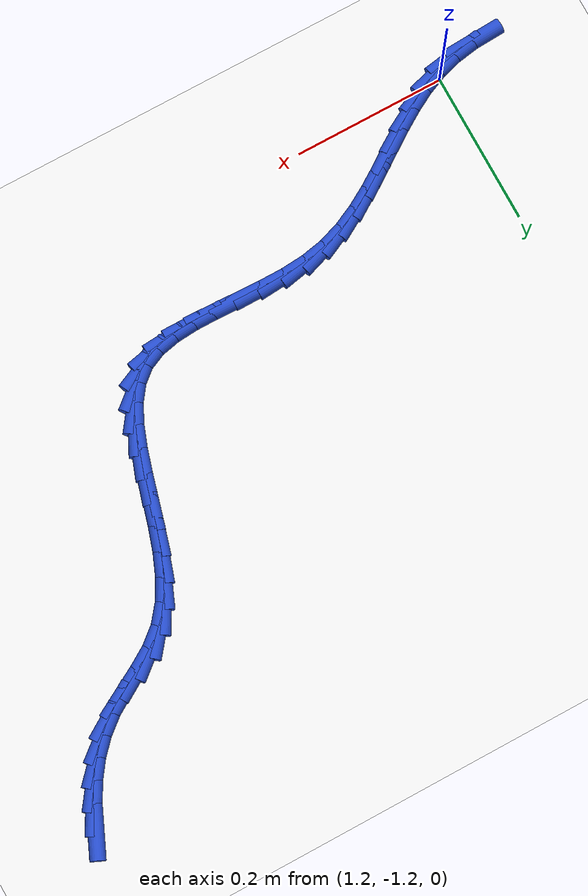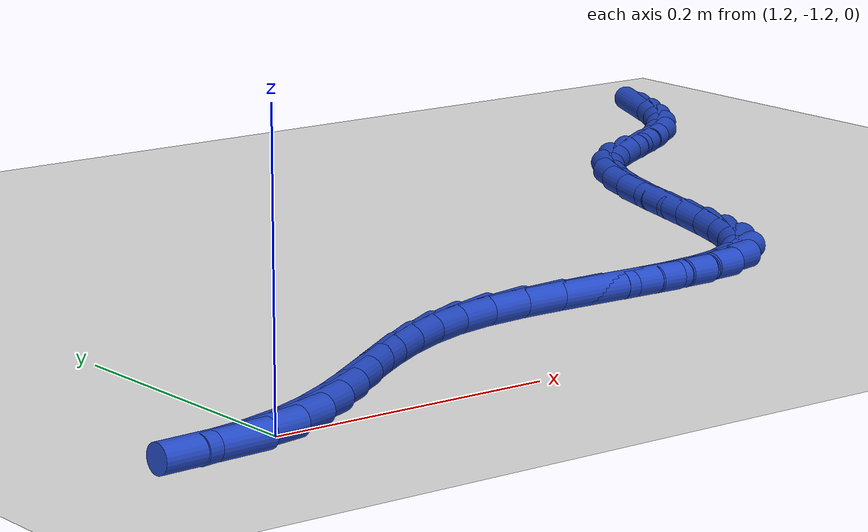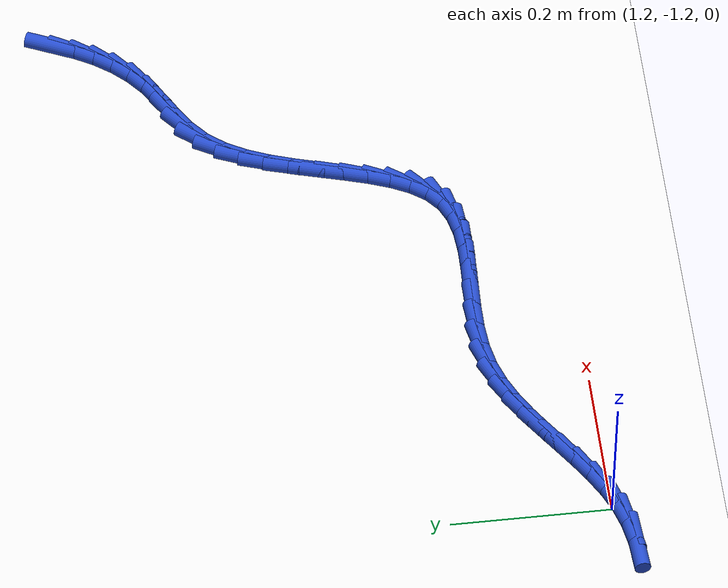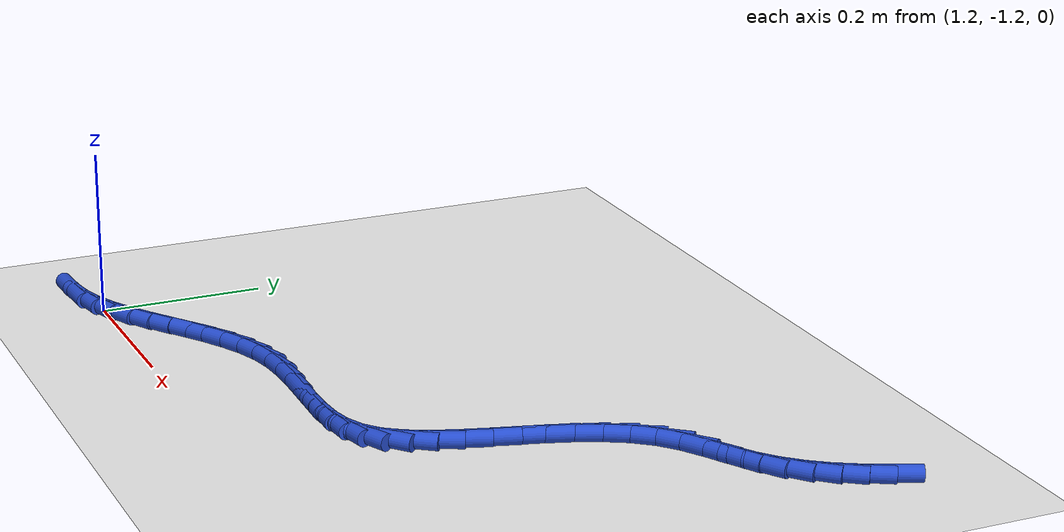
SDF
<sdf version="1.6">
 <world name="default">
  <model name="ground_plane">
   <static>1</static>
   <link name="link">
    <collision name="collision">
     <geometry><plane><normal>0 0 1</normal><size>100 100</size></plane></geometry>
     <surface><friction><ode><mu>100</mu><mu2>50</mu2></ode></friction></surface>
    </collision>
    <visual name="visual">
     <cast_shadows>0</cast_shadows>
     <geometry><plane><normal>0 0 1</normal><size>100 100</size></plane></geometry>
     <material>
      <script><uri>file://media/materials/scripts/gazebo.material</uri><name>Gazebo/WhiteGlow</name></script>
     </material>
    </visual>
   </link>
  </model>
  <model name="line">
   <link name="link_139">
    <pose>2.0072174687223088 -0.5885485716587876 0.01 0 1.57 1.1530857166393251</pose>
    <collision name="collision">
     <geometry><cylinder><radius>0.01</radius><length>0.08</length></cylinder></geometry>
    </collision>
    <visual name="visual">
     <material>
      <script><name>Gazebo/Blue</name><uri>file://media/materials/scripts/gazebo.material</uri></script>
     </material>
     <geometry><cylinder><radius>0.01</radius><length>0.08</length></cylinder></geometry>
    </visual>
   </link>
   <link name="link_140">
    <pose>1.9957252888035395 -0.6144418094183667 0.01 0 1.57 1.057908301661954</pose>
    <collision name="collision">
     <geometry><cylinder><radius>0.01</radius><length>0.08</length></cylinder></geometry>
    </collision>
    <visual name="visual">
     <material>
      <script><name>Gazebo/Blue</name><uri>file://media/materials/scripts/gazebo.material</uri></script>
     </material>
     <geometry><cylinder><radius>0.01</radius><length>0.08</length></cylinder></geometry>
    </visual>
   </link>
   <link name="link_141">
    <pose>1.982110468630761 -0.6386177182835386 0.01 0 1.57 0.9481592648895579</pose>
    <collision name="collision">
     <geometry><cylinder><radius>0.01</radius><length>0.08</length></cylinder></geometry>
    </collision>
    <visual name="visual">
     <material>
      <script><name>Gazebo/Blue</name><uri>file://media/materials/scripts/gazebo.material</uri></script>
     </material>
     <geometry><cylinder><radius>0.01</radius><length>0.08</length></cylinder></geometry>
    </visual>
   </link>
   <link name="link_142">
    <pose>1.9661319283271026 -0.6608751267630769 0.01 0 1.57 0.8255200364133276</pose>
    <collision name="collision">
     <geometry><cylinder><radius>0.01</radius><length>0.08</length></cylinder></geometry>
    </collision>
    <visual name="visual">
     <material>
      <script><name>Gazebo/Blue</name><uri>file://media/materials/scripts/gazebo.material</uri></script>
     </material>
     <geometry><cylinder><radius>0.01</radius><length>0.08</length></cylinder></geometry>
    </visual>
   </link>
   <link name="link_143">
    <pose>1.9475485880156924 -0.6810128633657533 0.01 0 1.57 0.6936138541228529</pose>
    <collision name="collision">
     <geometry><cylinder><radius>0.01</radius><length>0.08</length></cylinder></geometry>
    </collision>
    <visual name="visual">
     <material>
      <script><name>Gazebo/Blue</name><uri>file://media/materials/scripts/gazebo.material</uri></script>
     </material>
     <geometry><cylinder><radius>0.01</radius><length>0.08</length></cylinder></geometry>
    </visual>
   </link>
   <link name="link_144">
    <pose>1.926119367819661 -0.6988297566003412 0.01 0 1.57 0.5667091193999112</pose>
    <collision name="collision">
     <geometry><cylinder><radius>0.01</radius><length>0.08</length></cylinder></geometry>
    </collision>
    <visual name="visual">
     <material>
      <script><name>Gazebo/Blue</name><uri>file://media/materials/scripts/gazebo.material</uri></script>
     </material>
     <geometry><cylinder><radius>0.01</radius><length>0.08</length></cylinder></geometry>
    </visual>
   </link>
   <link name="link_145">
    <pose>1.9017964690643434 -0.7143072781014651 0.01 0 1.57 0.5134840861726183</pose>
    <collision name="collision">
     <geometry><cylinder><radius>0.01</radius><length>0.08</length></cylinder></geometry>
    </collision>
    <visual name="visual">
     <material>
      <script><name>Gazebo/Blue</name><uri>file://media/materials/scripts/gazebo.material</uri></script>
     </material>
     <geometry><cylinder><radius>0.01</radius><length>0.08</length></cylinder></geometry>
    </visual>
   </link>
   <link name="link_146">
    <pose>1.876027154249347 -0.7288396734470566 0.01 0 1.57 0.5577552594880382</pose>
    <collision name="collision">
     <geometry><cylinder><radius>0.01</radius><length>0.08</length></cylinder></geometry>
    </collision>
    <visual name="visual">
     <material>
      <script><name>Gazebo/Blue</name><uri>file://media/materials/scripts/gazebo.material</uri></script>
     </material>
     <geometry><cylinder><radius>0.01</radius><length>0.08</length></cylinder></geometry>
    </visual>
   </link>
   <link name="link_147">
    <pose>1.8509557514680757 -0.744479887755 0.01 0 1.57 0.7018582691781554</pose>
    <collision name="collision">
     <geometry><cylinder><radius>0.01</radius><length>0.08</length></cylinder></geometry>
    </collision>
    <visual name="visual">
     <material>
      <script><name>Gazebo/Blue</name><uri>file://media/materials/scripts/gazebo.material</uri></script>
     </material>
     <geometry><cylinder><radius>0.01</radius><length>0.08</length></cylinder></geometry>
    </visual>
   </link>
   <link name="link_148">
    <pose>1.8287230805777628 -0.7632769436053624 0.01 0 1.57 0.9034095454600886</pose>
    <collision name="collision">
     <geometry><cylinder><radius>0.01</radius><length>0.08</length></cylinder></geometry>
    </collision>
    <visual name="visual">
     <material>
      <script><name>Gazebo/Blue</name><uri>file://media/materials/scripts/gazebo.material</uri></script>
     </material>
     <geometry><cylinder><radius>0.01</radius><length>0.08</length></cylinder></geometry>
    </visual>
   </link>
   <link name="link_149">
    <pose>1.8105516316687345 -0.7863368798327973 0.01 0 1.57 1.0662116341294745</pose>
    <collision name="collision">
     <geometry><cylinder><radius>0.01</radius><length>0.08</length></cylinder></geometry>
    </collision>
    <visual name="visual">
     <material>
      <script><name>Gazebo/Blue</name><uri>file://media/materials/scripts/gazebo.material</uri></script>
     </material>
     <geometry><cylinder><radius>0.01</radius><length>0.08</length></cylinder></geometry>
    </visual>
   </link>
   <link name="link_150">
    <pose>1.7958690600953509 -0.8129227154301634 0.01 0 1.57 1.1811802717270141</pose>
    <collision name="collision">
     <geometry><cylinder><radius>0.01</radius><length>0.08</length></cylinder></geometry>
    </collision>
    <visual name="visual">
     <material>
      <script><name>Gazebo/Blue</name><uri>file://media/materials/scripts/gazebo.material</uri></script>
     </material>
     <geometry><cylinder><radius>0.01</radius><length>0.08</length></cylinder></geometry>
    </visual>
   </link>
   <link name="link_151">
    <pose>1.7838952200573297 -0.8420840894932837 0.01 0 1.57 1.2554007407317191</pose>
    <collision name="collision">
     <geometry><cylinder><radius>0.01</radius><length>0.08</length></cylinder></geometry>
    </collision>
    <visual name="visual">
     <material>
      <script><name>Gazebo/Blue</name><uri>file://media/materials/scripts/gazebo.material</uri></script>
     </material>
     <geometry><cylinder><radius>0.01</radius><length>0.08</length></cylinder></geometry>
    </visual>
   </link>
   <link name="link_152">
    <pose>1.7738499657543876 -0.8728706411179808 0.01 0 1.57 1.2952066321543783</pose>
    <collision name="collision">
     <geometry><cylinder><radius>0.01</radius><length>0.08</length></cylinder></geometry>
    </collision>
    <visual name="visual">
     <material>
      <script><name>Gazebo/Blue</name><uri>file://media/materials/scripts/gazebo.material</uri></script>
     </material>
     <geometry><cylinder><radius>0.01</radius><length>0.08</length></cylinder></geometry>
    </visual>
   </link>
   <link name="link_153">
    <pose>1.7649531513862404 -0.9043320094000767 0.01 0 1.57 1.3038491343203942</pose>
    <collision name="collision">
     <geometry><cylinder><radius>0.01</radius><length>0.08</length></cylinder></geometry>
    </collision>
    <visual name="visual">
     <material>
      <script><name>Gazebo/Blue</name><uri>file://media/materials/scripts/gazebo.material</uri></script>
     </material>
     <geometry><cylinder><radius>0.01</radius><length>0.08</length></cylinder></geometry>
    </visual>
   </link>
   <link name="link_154">
    <pose>1.7564246311526057 -0.9355178334353943 0.01 0 1.57 1.280797889272534</pose>
    <collision name="collision">
     <geometry><cylinder><radius>0.01</radius><length>0.08</length></cylinder></geometry>
    </collision>
    <visual name="visual">
     <material>
      <script><name>Gazebo/Blue</name><uri>file://media/materials/scripts/gazebo.material</uri></script>
     </material>
     <geometry><cylinder><radius>0.01</radius><length>0.08</length></cylinder></geometry>
    </visual>
   </link>
   <link name="link_155">
    <pose>1.7474842592531996 -0.9654777523197567 0.01 0 1.57 1.2210966739901248</pose>
    <collision name="collision">
     <geometry><cylinder><radius>0.01</radius><length>0.08</length></cylinder></geometry>
    </collision>
    <visual name="visual">
     <material>
      <script><name>Gazebo/Blue</name><uri>file://media/materials/scripts/gazebo.material</uri></script>
     </material>
     <geometry><cylinder><radius>0.01</radius><length>0.08</length></cylinder></geometry>
    </visual>
   </link>
   <link name="link_156">
    <pose>1.7373518898877394 -0.9932614051489845 0.01 0 1.57 1.114442809829101</pose>
    <collision name="collision">
     <geometry><cylinder><radius>0.01</radius><length>0.08</length></cylinder></geometry>
    </collision>
    <visual name="visual">
     <material>
      <script><name>Gazebo/Blue</name><uri>file://media/materials/scripts/gazebo.material</uri></script>
     </material>
     <geometry><cylinder><radius>0.01</radius><length>0.08</length></cylinder></geometry>
    </visual>
   </link>
   <link name="link_157">
    <pose>1.7252473772559416 -1.0179184310189016 0.01 0 1.57 0.9455207753550096</pose>
    <collision name="collision">
     <geometry><cylinder><radius>0.01</radius><length>0.08</length></cylinder></geometry>
    </collision>
    <visual name="visual">
     <material>
      <script><name>Gazebo/Blue</name><uri>file://media/materials/scripts/gazebo.material</uri></script>
     </material>
     <geometry><cylinder><radius>0.01</radius><length>0.08</length></cylinder></geometry>
    </visual>
   </link>
   <link name="link_158">
    <pose>1.7103905755575222 -1.0384984690253298 0.01 0 1.57 0.7020949692396072</pose>
    <collision name="collision">
     <geometry><cylinder><radius>0.01</radius><length>0.08</length></cylinder></geometry>
    </collision>
    <visual name="visual">
     <material>
      <script><name>Gazebo/Blue</name><uri>file://media/materials/scripts/gazebo.material</uri></script>
     </material>
     <geometry><cylinder><radius>0.01</radius><length>0.08</length></cylinder></geometry>
    </visual>
   </link>
   <link name="link_159">
    <pose>1.6920023669150122 -1.0540526126784493 0.01 0 1.57 0.42566186154324304</pose>
    <collision name="collision">
     <geometry><cylinder><radius>0.01</radius><length>0.08</length></cylinder></geometry>
    </collision>
    <visual name="visual">
     <material>
      <script><name>Gazebo/Blue</name><uri>file://media/materials/scripts/gazebo.material</uri></script>
     </material>
     <geometry><cylinder><radius>0.01</radius><length>0.08</length></cylinder></geometry>
    </visual>
   </link>
   <link name="link_160">
    <pose>1.6696846389627105 -1.0641710425477682 0.01 0 1.57 0.21515661449097956</pose>
    <collision name="collision">
     <geometry><cylinder><radius>0.01</radius><length>0.08</length></cylinder></geometry>
    </collision>
    <visual name="visual">
     <material>
      <script><name>Gazebo/Blue</name><uri>file://media/materials/scripts/gazebo.material</uri></script>
     </material>
     <geometry><cylinder><radius>0.01</radius><length>0.08</length></cylinder></geometry>
    </visual>
   </link>
   <link name="link_161">
    <pose>1.6439882927159788 -1.06978670411578 0.01 0 1.57 0.0791684611538485</pose>
    <collision name="collision">
     <geometry><cylinder><radius>0.01</radius><length>0.08</length></cylinder></geometry>
    </collision>
    <visual name="visual">
     <material>
      <script><name>Gazebo/Blue</name><uri>file://media/materials/scripts/gazebo.material</uri></script>
     </material>
     <geometry><cylinder><radius>0.01</radius><length>0.08</length></cylinder></geometry>
    </visual>
   </link>
   <link name="link_162">
    <pose>1.6156095185237858 -1.072038113643319 0.01 0 1.57 0.0008455040939515905</pose>
    <collision name="collision">
     <geometry><cylinder><radius>0.01</radius><length>0.08</length></cylinder></geometry>
    </collision>
    <visual name="visual">
     <material>
      <script><name>Gazebo/Blue</name><uri>file://media/materials/scripts/gazebo.material</uri></script>
     </material>
     <geometry><cylinder><radius>0.01</radius><length>0.08</length></cylinder></geometry>
    </visual>
   </link>
   <link name="link_163">
    <pose>1.5852445067351006 -1.072063787391217 0.01 0 1.57 -0.03352222803212876</pose>
    <collision name="collision">
     <geometry><cylinder><radius>0.01</radius><length>0.08</length></cylinder></geometry>
    </collision>
    <visual name="visual">
     <material>
      <script><name>Gazebo/Blue</name><uri>file://media/materials/scripts/gazebo.material</uri></script>
     </material>
     <geometry><cylinder><radius>0.01</radius><length>0.08</length></cylinder></geometry>
    </visual>
   </link>
   <link name="link_164">
    <pose>1.5535894476988914 -1.0710022416203082 0.01 0 1.57 -0.03131636282021807</pose>
    <collision name="collision">
     <geometry><cylinder><radius>0.01</radius><length>0.08</length></cylinder></geometry>
    </collision>
    <visual name="visual">
     <material>
      <script><name>Gazebo/Blue</name><uri>file://media/materials/scripts/gazebo.material</uri></script>
     </material>
     <geometry><cylinder><radius>0.01</radius><length>0.08</length></cylinder></geometry>
    </visual>
   </link>
   <link name="link_165">
    <pose>1.5213405317641264 -1.0699919925914245 0.01 0 1.57 0.00558572926286681</pose>
    <collision name="collision">
     <geometry><cylinder><radius>0.01</radius><length>0.08</length></cylinder></geometry>
    </collision>
    <visual name="visual">
     <material>
      <script><name>Gazebo/Blue</name><uri>file://media/materials/scripts/gazebo.material</uri></script>
     </material>
     <geometry><cylinder><radius>0.01</radius><length>0.08</length></cylinder></geometry>
    </visual>
   </link>
   <link name="link_166">
    <pose>1.4891939492797746 -1.0701715565654 0.01 0 1.57 0.07983152437736452</pose>
    <collision name="collision">
     <geometry><cylinder><radius>0.01</radius><length>0.08</length></cylinder></geometry>
    </collision>
    <visual name="visual">
     <material>
      <script><name>Gazebo/Blue</name><uri>file://media/materials/scripts/gazebo.material</uri></script>
     </material>
     <geometry><cylinder><radius>0.01</radius><length>0.08</length></cylinder></geometry>
    </visual>
   </link>
   <link name="link_167">
    <pose>1.457845890594804 -1.072679449803067 0.01 0 1.57 0.1968696128186014</pose>
    <collision name="collision">
     <geometry><cylinder><radius>0.01</radius><length>0.08</length></cylinder></geometry>
    </collision>
    <visual name="visual">
     <material>
      <script><name>Gazebo/Blue</name><uri>file://media/materials/scripts/gazebo.material</uri></script>
     </material>
     <geometry><cylinder><radius>0.01</radius><length>0.08</length></cylinder></geometry>
    </visual>
   </link>
   <link name="link_168">
    <pose>1.4279826988186373 -1.0786357551595112 0.01 0 1.57 0.3334294119182802</pose>
    <collision name="collision">
     <geometry><cylinder><radius>0.01</radius><length>0.08</length></cylinder></geometry>
    </collision>
    <visual name="visual">
     <material>
      <script><name>Gazebo/Blue</name><uri>file://media/materials/scripts/gazebo.material</uri></script>
     </material>
     <geometry><cylinder><radius>0.01</radius><length>0.08</length></cylinder></geometry>
    </visual>
   </link>
   <link name="link_169">
    <pose>1.3998699557968828 -1.088372917181385 0.01 0 1.57 0.447042913762371</pose>
    <collision name="collision">
     <geometry><cylinder><radius>0.01</radius><length>0.08</length></cylinder></geometry>
    </collision>
    <visual name="visual">
     <material>
      <script><name>Gazebo/Blue</name><uri>file://media/materials/scripts/gazebo.material</uri></script>
     </material>
     <geometry><cylinder><radius>0.01</radius><length>0.08</length></cylinder></geometry>
    </visual>
   </link>
   <link name="link_170">
    <pose>1.373203631793146 -1.1011571037841599 0.01 0 1.57 0.5312508700193608</pose>
    <collision name="collision">
     <geometry><cylinder><radius>0.01</radius><length>0.08</length></cylinder></geometry>
    </collision>
    <visual name="visual">
     <material>
      <script><name>Gazebo/Blue</name><uri>file://media/materials/scripts/gazebo.material</uri></script>
     </material>
     <geometry><cylinder><radius>0.01</radius><length>0.08</length></cylinder></geometry>
    </visual>
   </link>
   <link name="link_171">
    <pose>1.3476392209743413 -1.116178714206212 0.01 0 1.57 0.5855267718709827</pose>
    <collision name="collision">
     <geometry><cylinder><radius>0.01</radius><length>0.08</length></cylinder></geometry>
    </collision>
    <visual name="visual">
     <material>
      <script><name>Gazebo/Blue</name><uri>file://media/materials/scripts/gazebo.material</uri></script>
     </material>
     <geometry><cylinder><radius>0.01</radius><length>0.08</length></cylinder></geometry>
    </visual>
   </link>
   <link name="link_172">
    <pose>1.3228322175073808 -1.132628147685919 0.01 0 1.57 0.610499897862477</pose>
    <collision name="collision">
     <geometry><cylinder><radius>0.01</radius><length>0.08</length></cylinder></geometry>
    </collision>
    <visual name="visual">
     <material>
      <script><name>Gazebo/Blue</name><uri>file://media/materials/scripts/gazebo.material</uri></script>
     </material>
     <geometry><cylinder><radius>0.01</radius><length>0.08</length></cylinder></geometry>
    </visual>
   </link>
   <link name="link_173">
    <pose>1.2984381155591782 -1.1496958034616582 0.01 0 1.57 0.6065278470942795</pose>
    <collision name="collision">
     <geometry><cylinder><radius>0.01</radius><length>0.08</length></cylinder></geometry>
    </collision>
    <visual name="visual">
     <material>
      <script><name>Gazebo/Blue</name><uri>file://media/materials/scripts/gazebo.material</uri></script>
     </material>
     <geometry><cylinder><radius>0.01</radius><length>0.08</length></cylinder></geometry>
    </visual>
   </link>
   <link name="link_174">
    <pose>1.2741124092966456 -1.1665720807718063 0.01 0 1.57 0.5730567888725309</pose>
    <collision name="collision">
     <geometry><cylinder><radius>0.01</radius><length>0.08</length></cylinder></geometry>
    </collision>
    <visual name="visual">
     <material>
      <script><name>Gazebo/Blue</name><uri>file://media/materials/scripts/gazebo.material</uri></script>
     </material>
     <geometry><cylinder><radius>0.01</radius><length>0.08</length></cylinder></geometry>
    </visual>
   </link>
   <link name="link_175">
    <pose>1.249510592886696 -1.18244737885474 0.01 0 1.57 0.5086802743073724</pose>
    <collision name="collision">
     <geometry><cylinder><radius>0.01</radius><length>0.08</length></cylinder></geometry>
    </collision>
    <visual name="visual">
     <material>
      <script><name>Gazebo/Blue</name><uri>file://media/materials/scripts/gazebo.material</uri></script>
     </material>
     <geometry><cylinder><radius>0.01</radius><length>0.08</length></cylinder></geometry>
    </visual>
   </link>
   <link name="link_176">
    <pose>1.224288160496243 -1.196512096948837 0.01 0 1.57 0.41200916559700906</pose>
    <collision name="collision">
     <geometry><cylinder><radius>0.01</radius><length>0.08</length></cylinder></geometry>
    </collision>
    <visual name="visual">
     <material>
      <script><name>Gazebo/Blue</name><uri>file://media/materials/scripts/gazebo.material</uri></script>
     </material>
     <geometry><cylinder><radius>0.01</radius><length>0.08</length></cylinder></geometry>
    </visual>
   </link>
   <link name="link_177">
    <pose>1.198100606292198 -1.2079566342924741 0.01 0 1.57 0.28927088480957097</pose>
    <collision name="collision">
     <geometry><cylinder><radius>0.01</radius><length>0.08</length></cylinder></geometry>
    </collision>
    <visual name="visual">
     <material>
      <script><name>Gazebo/Blue</name><uri>file://media/materials/scripts/gazebo.material</uri></script>
     </material>
     <geometry><cylinder><radius>0.01</radius><length>0.08</length></cylinder></geometry>
    </visual>
   </link>
   <link name="link_178">
    <pose>1.1706911206245607 -1.2161142157082667 0.01 0 1.57 0.16841691051755314</pose>
    <collision name="collision">
     <geometry><cylinder><radius>0.01</radius><length>0.08</length></cylinder></geometry>
    </collision>
    <visual name="visual">
     <material>
      <script><name>Gazebo/Blue</name><uri>file://media/materials/scripts/gazebo.material</uri></script>
     </material>
     <geometry><cylinder><radius>0.01</radius><length>0.08</length></cylinder></geometry>
    </visual>
   </link>
   <link name="link_179">
    <pose>1.142196486935124 -1.2209590877977814 0.01 0 1.57 0.05742128542438684</pose>
    <collision name="collision">
     <geometry><cylinder><radius>0.01</radius><length>0.08</length></cylinder></geometry>
    </collision>
    <visual name="visual">
     <material>
      <script><name>Gazebo/Blue</name><uri>file://media/materials/scripts/gazebo.material</uri></script>
     </material>
     <geometry><cylinder><radius>0.01</radius><length>0.08</length></cylinder></geometry>
    </visual>
   </link>
  </model>
 </world>
</sdf>
